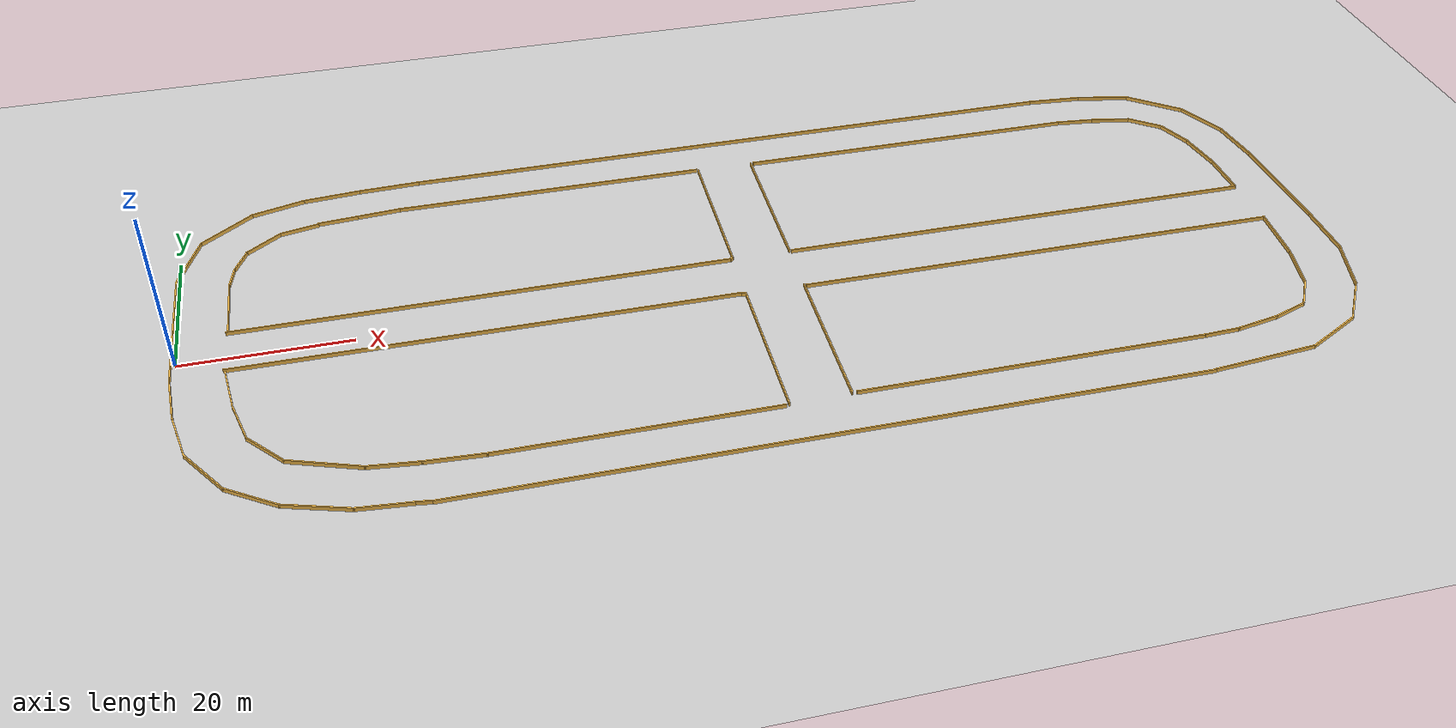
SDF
<sdf version="1.7">
 <world name="small_road_fixed">
  <model name="ground_plane">
   <static>1</static>
   <link name="link">
    <collision name="collision">
     <geometry><plane><normal>0 0 1</normal><size>100 100</size></plane></geometry>
     <surface>
      <contact><collide_bitmask>65535</collide_bitmask></contact>
      <friction><ode><mu>100</mu><mu2>50</mu2></ode></friction>
     </surface>
    </collision>
    <visual name="visual">
     <cast_shadows>0</cast_shadows>
     <geometry><plane><normal>0 0 1</normal><size>100 100</size></plane></geometry>
     <material>
      <script><uri>file://media/materials/scripts/gazebo.material</uri><name>Gazebo/Grey</name></script>
     </material>
    </visual>
   </link>
  </model>
  <model name="road_tracks">
   <pose>69.5076 0.923117 0 0 -0 -1.57505</pose>
   <link name="Wall_0">
    <collision name="Wall_0_Collision">
     <geometry><box><size>60 0.15 0.5</size></box></geometry>
     <pose>0 0 0.25 0 -0 0</pose>
    </collision>
    <visual name="Wall_0_Visual">
     <pose>0 0 0.25 0 -0 0</pose>
     <geometry><box><size>60 0.15 0.5</size></box></geometry>
     <material>
      <script><uri>file://media/materials/scripts/gazebo.material</uri><name>Gazebo/Grey</name></script>
      <ambient>1 0.764706 0.305882 1</ambient>
     </material>
     <meta><layer>0</layer></meta>
    </visual>
    <pose>3.62459 -34.2484 0 0 -0 -1.57079</pose>
   </link>
   <link name="Wall_11">
    <collision name="Wall_11_Collision">
     <geometry><box><size>20.75 0.15 0.5</size></box></geometry>
     <pose>0 0 0.25 0 -0 0</pose>
    </collision>
    <visual name="Wall_11_Visual">
     <pose>0 0 0.25 0 -0 0</pose>
     <geometry><box><size>20.75 0.15 0.5</size></box></geometry>
     <material>
      <script><uri>file://media/materials/scripts/gazebo.material</uri><name>Gazebo/Grey</name></script>
      <ambient>1 0.764706 0.305882 1</ambient>
     </material>
     <meta><layer>0</layer></meta>
    </visual>
    <pose>14.1607 -3.84363 0 0 -0 0</pose>
   </link>
   <link name="Wall_14">
    <collision name="Wall_14_Collision">
     <geometry><box><size>0.694215 0.15 0.5</size></box></geometry>
     <pose>0 0 0.25 0 -0 0</pose>
    </collision>
    <visual name="Wall_14_Visual">
     <pose>0 0 0.25 0 -0 0</pose>
     <geometry><box><size>0.694215 0.15 0.5</size></box></geometry>
     <material>
      <script><uri>file://media/materials/scripts/gazebo.material</uri><name>Gazebo/Grey</name></script>
      <ambient>1 0.764706 0.305882 1</ambient>
     </material>
     <meta><layer>0</layer></meta>
    </visual>
    <pose>3.75272 -4.08363 0 0 -0 -2.06149</pose>
   </link>
   <link name="Wall_18">
    <collision name="Wall_18_Collision">
     <geometry><box><size>20.75 0.15 0.5</size></box></geometry>
     <pose>0 0 0.25 0 -0 0</pose>
    </collision>
    <visual name="Wall_18_Visual">
     <pose>0 0 0.25 0 -0 0</pose>
     <geometry><box><size>20.75 0.15 0.5</size></box></geometry>
     <material>
      <script><uri>file://media/materials/scripts/gazebo.material</uri><name>Gazebo/Grey</name></script>
      <ambient>1 0.764706 0.305882 1</ambient>
     </material>
     <meta><layer>0</layer></meta>
    </visual>
    <pose>-13.9695 -3.74763 0 0 -0 3.14159</pose>
   </link>
   <link name="Wall_198">
    <collision name="Wall_198_Collision">
     <geometry><box><size>13.1514 0.15 0.5</size></box></geometry>
     <pose>0 0 0.25 0 -0 0</pose>
    </collision>
    <visual name="Wall_198_Visual">
     <pose>0 0 0.25 0 -0 0</pose>
     <geometry><box><size>13.1514 0.15 0.5</size></box></geometry>
     <material>
      <script><uri>file://media/materials/scripts/gazebo.material</uri><name>Gazebo/Grey</name></script>
      <ambient>1 0.764706 0.305882 1</ambient>
     </material>
     <meta><layer>0</layer></meta>
    </visual>
    <pose>29.7845 50.6889 0 0 -0 1.66145</pose>
   </link>
   <link name="Wall_199">
    <collision name="Wall_199_Collision">
     <geometry><box><size>8.0708 0.15 0.5</size></box></geometry>
     <pose>0 0 0.25 0 -0 0</pose>
    </collision>
    <visual name="Wall_199_Visual">
     <pose>0 0 0.25 0 -0 0</pose>
     <geometry><box><size>8.0708 0.15 0.5</size></box></geometry>
     <material>
      <script><uri>file://media/materials/scripts/gazebo.material</uri><name>Gazebo/Grey</name></script>
      <ambient>1 0.764706 0.305882 1</ambient>
     </material>
     <meta><layer>0</layer></meta>
    </visual>
    <pose>27.3337 60.6581 0 0 -0 2.06033</pose>
   </link>
   <link name="Wall_20">
    <collision name="Wall_20_Collision">
     <geometry><box><size>0.505876 0.15 0.5</size></box></geometry>
     <pose>0 0 0.25 0 -0 0</pose>
    </collision>
    <visual name="Wall_20_Visual">
     <pose>0 0 0.25 0 -0 0</pose>
     <geometry><box><size>0.505876 0.15 0.5</size></box></geometry>
     <material>
      <script><uri>file://media/materials/scripts/gazebo.material</uri><name>Gazebo/Grey</name></script>
      <ambient>1 0.764706 0.305882 1</ambient>
     </material>
     <meta><layer>0</layer></meta>
    </visual>
    <pose>-3.56351 -3.89063 0 0 -0 2.20868</pose>
   </link>
   <link name="Wall_200">
    <collision name="Wall_200_Collision">
     <geometry><box><size>7.16954 0.15 0.5</size></box></geometry>
     <pose>0 0 0.25 0 -0 0</pose>
    </collision>
    <visual name="Wall_200_Visual">
     <pose>0 0 0.25 0 -0 0</pose>
     <geometry><box><size>7.16954 0.15 0.5</size></box></geometry>
     <material>
      <script><uri>file://media/materials/scripts/gazebo.material</uri><name>Gazebo/Grey</name></script>
      <ambient>1 0.764706 0.305882 1</ambient>
     </material>
     <meta><layer>0</layer></meta>
    </visual>
    <pose>22.529 66.0664 0 0 -0 2.56513</pose>
   </link>
   <link name="Wall_201">
    <collision name="Wall_201_Collision">
     <geometry><box><size>7.78977 0.15 0.5</size></box></geometry>
     <pose>0 0 0.25 0 -0 0</pose>
    </collision>
    <visual name="Wall_201_Visual">
     <pose>0 0 0.25 0 -0 0</pose>
     <geometry><box><size>7.78977 0.15 0.5</size></box></geometry>
     <material>
      <script><uri>file://media/materials/scripts/gazebo.material</uri><name>Gazebo/Grey</name></script>
      <ambient>1 0.764706 0.305882 1</ambient>
     </material>
     <meta><layer>0</layer></meta>
    </visual>
    <pose>15.908 69.009 0 0 -0 2.86867</pose>
   </link>
   <link name="Wall_202">
    <collision name="Wall_202_Collision">
     <geometry><box><size>7.80173 0.15 0.5</size></box></geometry>
     <pose>0 0 0.25 0 -0 0</pose>
    </collision>
    <visual name="Wall_202_Visual">
     <pose>0 0 0.25 0 -0 0</pose>
     <geometry><box><size>7.80173 0.15 0.5</size></box></geometry>
     <material>
      <script><uri>file://media/materials/scripts/gazebo.material</uri><name>Gazebo/Grey</name></script>
      <ambient>1 0.764706 0.305882 1</ambient>
     </material>
     <meta><layer>0</layer></meta>
    </visual>
    <pose>8.40349 70.039 0 0 -0 3.1415</pose>
   </link>
   <link name="Wall_203">
    <collision name="Wall_203_Collision">
     <geometry><box><size>15.1693 0.15 0.5</size></box></geometry>
     <pose>0 0 0.25 0 -0 0</pose>
    </collision>
    <visual name="Wall_203_Visual">
     <pose>0 0 0.25 0 -0 0</pose>
     <geometry><box><size>15.1693 0.15 0.5</size></box></geometry>
     <material>
      <script><uri>file://media/materials/scripts/gazebo.material</uri><name>Gazebo/Grey</name></script>
      <ambient>1 0.764706 0.305882 1</ambient>
     </material>
     <meta><layer>0</layer></meta>
    </visual>
    <pose>-2.92601 69.7449 0 0 -0 -3.10236</pose>
   </link>
   <link name="Wall_204">
    <collision name="Wall_204_Collision">
     <geometry><box><size>6.9761 0.15 0.5</size></box></geometry>
     <pose>0 0 0.25 0 -0 0</pose>
    </collision>
    <visual name="Wall_204_Visual">
     <pose>0 0 0.25 0 -0 0</pose>
     <geometry><box><size>6.9761 0.15 0.5</size></box></geometry>
     <material>
      <script><uri>file://media/materials/scripts/gazebo.material</uri><name>Gazebo/Grey</name></script>
      <ambient>1 0.764706 0.305882 1</ambient>
     </material>
     <meta><layer>0</layer></meta>
    </visual>
    <pose>-13.814 69.0089 0 0 -0 -3.01188</pose>
   </link>
   <link name="Wall_205">
    <collision name="Wall_205_Collision">
     <geometry><box><size>6.99465 0.15 0.5</size></box></geometry>
     <pose>0 0 0.25 0 -0 0</pose>
    </collision>
    <visual name="Wall_205_Visual">
     <pose>0 0 0.25 0 -0 0</pose>
     <geometry><box><size>6.99465 0.15 0.5</size></box></geometry>
     <material>
      <script><uri>file://media/materials/scripts/gazebo.material</uri><name>Gazebo/Grey</name></script>
      <ambient>1 0.764706 0.305882 1</ambient>
     </material>
     <meta><layer>0</layer></meta>
    </visual>
    <pose>-20.2885 67.0959 0 0 -0 -2.69715</pose>
   </link>
   <link name="Wall_206">
    <collision name="Wall_206_Collision">
     <geometry><box><size>8.09985 0.15 0.5</size></box></geometry>
     <pose>0 0 0.25 0 -0 0</pose>
    </collision>
    <visual name="Wall_206_Visual">
     <pose>0 0 0.25 0 -0 0</pose>
     <geometry><box><size>8.09985 0.15 0.5</size></box></geometry>
     <material>
      <script><uri>file://media/materials/scripts/gazebo.material</uri><name>Gazebo/Grey</name></script>
      <ambient>1 0.764706 0.305882 1</ambient>
     </material>
     <meta><layer>0</layer></meta>
    </visual>
    <pose>-25.8795 62.5349 0 0 -0 -2.25131</pose>
   </link>
   <link name="Wall_207">
    <collision name="Wall_207_Collision">
     <geometry><box><size>7.0764 0.15 0.5</size></box></geometry>
     <pose>0 0 0.25 0 -0 0</pose>
    </collision>
    <visual name="Wall_207_Visual">
     <pose>0 0 0.25 0 -0 0</pose>
     <geometry><box><size>7.0764 0.15 0.5</size></box></geometry>
     <material>
      <script><uri>file://media/materials/scripts/gazebo.material</uri><name>Gazebo/Grey</name></script>
      <ambient>1 0.764706 0.305882 1</ambient>
     </material>
     <meta><layer>0</layer></meta>
    </visual>
    <pose>-29.1165 56.0609 0 0 -0 -1.78493</pose>
   </link>
   <link name="Wall_208">
    <collision name="Wall_208_Collision">
     <geometry><box><size>7.23707 0.15 0.5</size></box></geometry>
     <pose>0 0 0.25 0 -0 0</pose>
    </collision>
    <visual name="Wall_208_Visual">
     <pose>0 0 0.25 0 -0 0</pose>
     <geometry><box><size>7.23707 0.15 0.5</size></box></geometry>
     <material>
      <script><uri>file://media/materials/scripts/gazebo.material</uri><name>Gazebo/Grey</name></script>
      <ambient>1 0.764706 0.305882 1</ambient>
     </material>
     <meta><layer>0</layer></meta>
    </visual>
    <pose>-30.1465 49.1454 0 0 -0 -1.65387</pose>
   </link>
   <link name="Wall_209">
    <collision name="Wall_209_Collision">
     <geometry><box><size>85.7844 0.15 0.5</size></box></geometry>
     <pose>0 0 0.25 0 -0 0</pose>
    </collision>
    <visual name="Wall_209_Visual">
     <pose>0 0 0.25 0 -0 0</pose>
     <geometry><box><size>85.7844 0.15 0.5</size></box></geometry>
     <material>
      <script><uri>file://media/materials/scripts/gazebo.material</uri><name>Gazebo/Grey</name></script>
      <ambient>1 0.764706 0.305882 1</ambient>
     </material>
     <meta><layer>0</layer></meta>
    </visual>
    <pose>-30.2935 2.79737 0 0 -0 -1.56736</pose>
   </link>
   <link name="Wall_210">
    <collision name="Wall_210_Collision">
     <geometry><box><size>7.8068 0.15 0.5</size></box></geometry>
     <pose>0 0 0.25 0 -0 0</pose>
    </collision>
    <visual name="Wall_210_Visual">
     <pose>0 0 0.25 0 -0 0</pose>
     <geometry><box><size>7.8068 0.15 0.5</size></box></geometry>
     <material>
      <script><uri>file://media/materials/scripts/gazebo.material</uri><name>Gazebo/Grey</name></script>
      <ambient>1 0.764706 0.305882 1</ambient>
     </material>
     <meta><layer>0</layer></meta>
    </visual>
    <pose>-29.9995 -43.8451 0 0 -0 -1.53239</pose>
   </link>
   <link name="Wall_211">
    <collision name="Wall_211_Collision">
     <geometry><box><size>7.23707 0.15 0.5</size></box></geometry>
     <pose>0 0 0.25 0 -0 0</pose>
    </collision>
    <visual name="Wall_211_Visual">
     <pose>0 0 0.25 0 -0 0</pose>
     <geometry><box><size>7.23707 0.15 0.5</size></box></geometry>
     <material>
      <script><uri>file://media/materials/scripts/gazebo.material</uri><name>Gazebo/Grey</name></script>
      <ambient>1 0.764706 0.305882 1</ambient>
     </material>
     <meta><layer>0</layer></meta>
    </visual>
    <pose>-29.558 -51.2021 0 0 -0 -1.4876</pose>
   </link>
   <link name="Wall_212">
    <collision name="Wall_212_Collision">
     <geometry><box><size>6.86049 0.15 0.5</size></box></geometry>
     <pose>0 0 0.25 0 -0 0</pose>
    </collision>
    <visual name="Wall_212_Visual">
     <pose>0 0 0.25 0 -0 0</pose>
     <geometry><box><size>6.86049 0.15 0.5</size></box></geometry>
     <material>
      <script><uri>file://media/materials/scripts/gazebo.material</uri><name>Gazebo/Grey</name></script>
      <ambient>1 0.764706 0.305882 1</ambient>
     </material>
     <meta><layer>0</layer></meta>
    </visual>
    <pose>-28.3805 -57.9706 0 0 -0 -1.30449</pose>
   </link>
   <link name="Wall_213">
    <collision name="Wall_213_Collision">
     <geometry><box><size>8.10086 0.15 0.5</size></box></geometry>
     <pose>0 0 0.25 0 -0 0</pose>
    </collision>
    <visual name="Wall_213_Visual">
     <pose>0 0 0.25 0 -0 0</pose>
     <geometry><box><size>8.10086 0.15 0.5</size></box></geometry>
     <material>
      <script><uri>file://media/materials/scripts/gazebo.material</uri><name>Gazebo/Grey</name></script>
      <ambient>1 0.764706 0.305882 1</ambient>
     </material>
     <meta><layer>0</layer></meta>
    </visual>
    <pose>-24.9965 -64.2976 0 0 -0 -0.890359</pose>
   </link>
   <link name="Wall_214">
    <collision name="Wall_214_Collision">
     <geometry><box><size>8.24656 0.15 0.5</size></box></geometry>
     <pose>0 0 0.25 0 -0 0</pose>
    </collision>
    <visual name="Wall_214_Visual">
     <pose>0 0 0.25 0 -0 0</pose>
     <geometry><box><size>8.24656 0.15 0.5</size></box></geometry>
     <material>
      <script><uri>file://media/materials/scripts/gazebo.material</uri><name>Gazebo/Grey</name></script>
      <ambient>1 0.764706 0.305882 1</ambient>
     </material>
     <meta><layer>0</layer></meta>
    </visual>
    <pose>-18.67 -68.7116 0 0 -0 -0.333195</pose>
   </link>
   <link name="Wall_215">
    <collision name="Wall_215_Collision">
     <geometry><box><size>19.2778 0.15 0.5</size></box></geometry>
     <pose>0 0 0.25 0 -0 0</pose>
    </collision>
    <visual name="Wall_215_Visual">
     <pose>0 0 0.25 0 -0 0</pose>
     <geometry><box><size>19.2778 0.15 0.5</size></box></geometry>
     <material>
      <script><uri>file://media/materials/scripts/gazebo.material</uri><name>Gazebo/Grey</name></script>
      <ambient>1 0.764706 0.305882 1</ambient>
     </material>
     <meta><layer>0</layer></meta>
    </visual>
    <pose>-5.28051 -70.0356 0 0 -0 0</pose>
   </link>
   <link name="Wall_216">
    <collision name="Wall_216_Collision">
     <geometry><box><size>6.65074 0.15 0.5</size></box></geometry>
     <pose>0 0 0.25 0 -0 0</pose>
    </collision>
    <visual name="Wall_216_Visual">
     <pose>0 0 0.25 0 -0 0</pose>
     <geometry><box><size>6.65074 0.15 0.5</size></box></geometry>
     <material>
      <script><uri>file://media/materials/scripts/gazebo.material</uri><name>Gazebo/Grey</name></script>
      <ambient>1 0.764706 0.305882 1</ambient>
     </material>
     <meta><layer>0</layer></meta>
    </visual>
    <pose>7.52049 -69.7416 0 0 -0 0.090576</pose>
   </link>
   <link name="Wall_217">
    <collision name="Wall_217_Collision">
     <geometry><box><size>6.78914 0.15 0.5</size></box></geometry>
     <pose>0 0 0.25 0 -0 0</pose>
    </collision>
    <visual name="Wall_217_Visual">
     <pose>0 0 0.25 0 -0 0</pose>
     <geometry><box><size>6.78914 0.15 0.5</size></box></geometry>
     <material>
      <script><uri>file://media/materials/scripts/gazebo.material</uri><name>Gazebo/Grey</name></script>
      <ambient>1 0.764706 0.305882 1</ambient>
     </material>
     <meta><layer>0</layer></meta>
    </visual>
    <pose>13.9945 -68.7116 0 0 -0 0.22357</pose>
   </link>
   <link name="Wall_218">
    <collision name="Wall_218_Collision">
     <geometry><box><size>7.57715 0.15 0.5</size></box></geometry>
     <pose>0 0 0.25 0 -0 0</pose>
    </collision>
    <visual name="Wall_218_Visual">
     <pose>0 0 0.25 0 -0 0</pose>
     <geometry><box><size>7.57715 0.15 0.5</size></box></geometry>
     <material>
      <script><uri>file://media/materials/scripts/gazebo.material</uri><name>Gazebo/Grey</name></script>
      <ambient>1 0.764706 0.305882 1</ambient>
     </material>
     <meta><layer>0</layer></meta>
    </visual>
    <pose>20.3215 -65.9156 0 0 -0 0.588003</pose>
   </link>
   <link name="Wall_219">
    <collision name="Wall_219_Collision">
     <geometry><box><size>6.92471 0.15 0.5</size></box></geometry>
     <pose>0 0 0.25 0 -0 0</pose>
    </collision>
    <visual name="Wall_219_Visual">
     <pose>0 0 0.25 0 -0 0</pose>
     <geometry><box><size>6.92471 0.15 0.5</size></box></geometry>
     <material>
      <script><uri>file://media/materials/scripts/gazebo.material</uri><name>Gazebo/Grey</name></script>
      <ambient>1 0.764706 0.305882 1</ambient>
     </material>
     <meta><layer>0</layer></meta>
    </visual>
    <pose>25.3245 -61.0601 0 0 -0 0.970676</pose>
   </link>
   <link name="Wall_22">
    <collision name="Wall_22_Collision">
     <geometry><box><size>39 0.15 0.5</size></box></geometry>
     <pose>0 0 0.25 0 -0 0</pose>
    </collision>
    <visual name="Wall_22_Visual">
     <pose>0 0 0.25 0 -0 0</pose>
     <geometry><box><size>39 0.15 0.5</size></box></geometry>
     <material>
      <script><uri>file://media/materials/scripts/gazebo.material</uri><name>Gazebo/Grey</name></script>
      <ambient>1 0.764706 0.305882 1</ambient>
     </material>
     <meta><layer>0</layer></meta>
    </visual>
    <pose>-24.3675 -23.4146 0 0 -0 -1.5708</pose>
   </link>
   <link name="Wall_220">
    <collision name="Wall_220_Collision">
     <geometry><box><size>7.87436 0.15 0.5</size></box></geometry>
     <pose>0 0 0.25 0 -0 0</pose>
    </collision>
    <visual name="Wall_220_Visual">
     <pose>0 0 0.25 0 -0 0</pose>
     <geometry><box><size>7.87436 0.15 0.5</size></box></geometry>
     <material>
      <script><uri>file://media/materials/scripts/gazebo.material</uri><name>Gazebo/Grey</name></script>
      <ambient>1 0.764706 0.305882 1</ambient>
     </material>
     <meta><layer>0</layer></meta>
    </visual>
    <pose>28.4145 -54.5861 0 0 -0 1.26112</pose>
   </link>
   <link name="Wall_221">
    <collision name="Wall_221_Collision">
     <geometry><box><size>6.35773 0.15 0.5</size></box></geometry>
     <pose>0 0 0.25 0 -0 0</pose>
    </collision>
    <visual name="Wall_221_Visual">
     <pose>0 0 0.25 0 -0 0</pose>
     <geometry><box><size>6.35773 0.15 0.5</size></box></geometry>
     <material>
      <script><uri>file://media/materials/scripts/gazebo.material</uri><name>Gazebo/Grey</name></script>
      <ambient>1 0.764706 0.305882 1</ambient>
     </material>
     <meta><layer>0</layer></meta>
    </visual>
    <pose>29.8855 -47.8176 0 0 -0 1.47594</pose>
   </link>
   <link name="Wall_222">
    <collision name="Wall_222_Collision">
     <geometry><box><size>1.82339 0.15 0.5</size></box></geometry>
     <pose>0 0 0.25 0 -0 0</pose>
    </collision>
    <visual name="Wall_222_Visual">
     <pose>0 0 0.25 0 -0 0</pose>
     <geometry><box><size>1.82339 0.15 0.5</size></box></geometry>
     <material>
      <script><uri>file://media/materials/scripts/gazebo.material</uri><name>Gazebo/Grey</name></script>
      <ambient>1 0.764706 0.305882 1</ambient>
     </material>
     <meta><layer>0</layer></meta>
    </visual>
    <pose>30.286 -43.8981 0 0 -0 1.4431</pose>
   </link>
   <link name="Wall_225">
    <collision name="Wall_225_Collision">
     <geometry><box><size>20.75 0.15 0.5</size></box></geometry>
     <pose>0 0 0.25 0 -0 0</pose>
    </collision>
    <visual name="Wall_225_Visual">
     <pose>0 0 0.25 0 -0 0</pose>
     <geometry><box><size>20.75 0.15 0.5</size></box></geometry>
     <material>
      <script><uri>file://media/materials/scripts/gazebo.material</uri><name>Gazebo/Grey</name></script>
      <ambient>1 0.764706 0.305882 1</ambient>
     </material>
     <meta><layer>0</layer></meta>
    </visual>
    <pose>14.0655 3.37337 0 0 -0 0</pose>
   </link>
   <link name="Wall_227">
    <collision name="Wall_227_Collision">
     <geometry><box><size>42 0.15 0.5</size></box></geometry>
     <pose>0 0 0.25 0 -0 0</pose>
    </collision>
    <visual name="Wall_227_Visual">
     <pose>0 0 0.25 0 -0 0</pose>
     <geometry><box><size>42 0.15 0.5</size></box></geometry>
     <material>
      <script><uri>file://media/materials/scripts/gazebo.material</uri><name>Gazebo/Grey</name></script>
      <ambient>1 0.764706 0.305882 1</ambient>
     </material>
     <meta><layer>0</layer></meta>
    </visual>
    <pose>24.3475 24.8924 0 0 -0 1.5708</pose>
   </link>
   <link name="Wall_228">
    <collision name="Wall_228_Collision">
     <geometry><box><size>4.52688 0.15 0.5</size></box></geometry>
     <pose>0 0 0.25 0 -0 0</pose>
    </collision>
    <visual name="Wall_228_Visual">
     <pose>0 0 0.25 0 -0 0</pose>
     <geometry><box><size>4.52688 0.15 0.5</size></box></geometry>
     <material>
      <script><uri>file://media/materials/scripts/gazebo.material</uri><name>Gazebo/Grey</name></script>
      <ambient>1 0.764706 0.305882 1</ambient>
     </material>
     <meta><layer>0</layer></meta>
    </visual>
    <pose>24.2565 48.0039 0 0 -0 1.61239</pose>
   </link>
   <link name="Wall_229">
    <collision name="Wall_229_Collision">
     <geometry><box><size>5.62094 0.15 0.5</size></box></geometry>
     <pose>0 0 0.25 0 -0 0</pose>
    </collision>
    <visual name="Wall_229_Visual">
     <pose>0 0 0.25 0 -0 0</pose>
     <geometry><box><size>5.62094 0.15 0.5</size></box></geometry>
     <material>
      <script><uri>file://media/materials/scripts/gazebo.material</uri><name>Gazebo/Grey</name></script>
      <ambient>1 0.764706 0.305882 1</ambient>
     </material>
     <meta><layer>0</layer></meta>
    </visual>
    <pose>23.6528 52.8774 0 0 -0 1.75933</pose>
   </link>
   <link name="Wall_23">
    <collision name="Wall_23_Collision">
     <geometry><box><size>5.52332 0.15 0.5</size></box></geometry>
     <pose>0 0 0.25 0 -0 0</pose>
    </collision>
    <visual name="Wall_23_Visual">
     <pose>0 0 0.25 0 -0 0</pose>
     <geometry><box><size>5.52332 0.15 0.5</size></box></geometry>
     <material>
      <script><uri>file://media/materials/scripts/gazebo.material</uri><name>Gazebo/Grey</name></script>
      <ambient>1 0.764706 0.305882 1</ambient>
     </material>
     <meta><layer>0</layer></meta>
    </visual>
    <pose>-24.1395 -45.5166 0 0 -0 -1.48583</pose>
   </link>
   <link name="Wall_230">
    <collision name="Wall_230_Collision">
     <geometry><box><size>4.76296 0.15 0.5</size></box></geometry>
     <pose>0 0 0.25 0 -0 0</pose>
    </collision>
    <visual name="Wall_230_Visual">
     <pose>0 0 0.25 0 -0 0</pose>
     <geometry><box><size>4.76296 0.15 0.5</size></box></geometry>
     <material>
      <script><uri>file://media/materials/scripts/gazebo.material</uri><name>Gazebo/Grey</name></script>
      <ambient>1 0.764706 0.305882 1</ambient>
     </material>
     <meta><layer>0</layer></meta>
    </visual>
    <pose>22.3725 57.7394 0 0 -0 1.91007</pose>
   </link>
   <link name="Wall_231">
    <collision name="Wall_231_Collision">
     <geometry><box><size>4.6246 0.15 0.5</size></box></geometry>
     <pose>0 0 0.25 0 -0 0</pose>
    </collision>
    <visual name="Wall_231_Visual">
     <pose>0 0 0.25 0 -0 0</pose>
     <geometry><box><size>4.6246 0.15 0.5</size></box></geometry>
     <material>
      <script><uri>file://media/materials/scripts/gazebo.material</uri><name>Gazebo/Grey</name></script>
      <ambient>1 0.764706 0.305882 1</ambient>
     </material>
     <meta><layer>0</layer></meta>
    </visual>
    <pose>19.6867 61.0659 0 0 -0 2.60095</pose>
   </link>
   <link name="Wall_232">
    <collision name="Wall_232_Collision">
     <geometry><box><size>6.42354 0.15 0.5</size></box></geometry>
     <pose>0 0 0.25 0 -0 0</pose>
    </collision>
    <visual name="Wall_232_Visual">
     <pose>0 0 0.25 0 -0 0</pose>
     <geometry><box><size>6.42354 0.15 0.5</size></box></geometry>
     <material>
      <script><uri>file://media/materials/scripts/gazebo.material</uri><name>Gazebo/Grey</name></script>
      <ambient>1 0.764706 0.305882 1</ambient>
     </material>
     <meta><layer>0</layer></meta>
    </visual>
    <pose>14.6975 62.8574 0 0 -0 2.93613</pose>
   </link>
   <link name="Wall_233">
    <collision name="Wall_233_Collision">
     <geometry><box><size>7.84377 0.15 0.5</size></box></geometry>
     <pose>0 0 0.25 0 -0 0</pose>
    </collision>
    <visual name="Wall_233_Visual">
     <pose>0 0 0.25 0 -0 0</pose>
     <geometry><box><size>7.84377 0.15 0.5</size></box></geometry>
     <material>
      <script><uri>file://media/materials/scripts/gazebo.material</uri><name>Gazebo/Grey</name></script>
      <ambient>1 0.764706 0.305882 1</ambient>
     </material>
     <meta><layer>0</layer></meta>
    </visual>
    <pose>7.78799 63.7529 0 0 -0 3.07513</pose>
   </link>
   <link name="Wall_234">
    <collision name="Wall_234_Collision">
     <geometry><box><size>60.5 0.15 0.5</size></box></geometry>
     <pose>0 0 0.25 0 -0 0</pose>
    </collision>
    <visual name="Wall_234_Visual">
     <pose>0 0 0.25 0 -0 0</pose>
     <geometry><box><size>60.5 0.15 0.5</size></box></geometry>
     <material>
      <script><uri>file://media/materials/scripts/gazebo.material</uri><name>Gazebo/Grey</name></script>
      <ambient>1 0.764706 0.305882 1</ambient>
     </material>
     <meta><layer>0</layer></meta>
    </visual>
    <pose>3.94949 33.8334 0 0 -0 -1.5708</pose>
   </link>
   <link name="Wall_236">
    <collision name="Wall_236_Collision">
     <geometry><box><size>20.75 0.15 0.5</size></box></geometry>
     <pose>0 0 0.25 0 -0 0</pose>
    </collision>
    <visual name="Wall_236_Visual">
     <pose>0 0 0.25 0 -0 0</pose>
     <geometry><box><size>20.75 0.15 0.5</size></box></geometry>
     <material>
      <script><uri>file://media/materials/scripts/gazebo.material</uri><name>Gazebo/Grey</name></script>
      <ambient>1 0.764706 0.305882 1</ambient>
     </material>
     <meta><layer>0</layer></meta>
    </visual>
    <pose>-13.8895 3.43237 0 0 -0 3.14159</pose>
   </link>
   <link name="Wall_239">
    <collision name="Wall_239_Collision">
     <geometry><box><size>60.25 0.15 0.5</size></box></geometry>
     <pose>0 0 0.25 0 -0 0</pose>
    </collision>
    <visual name="Wall_239_Visual">
     <pose>0 0 0.25 0 -0 0</pose>
     <geometry><box><size>60.25 0.15 0.5</size></box></geometry>
     <material>
      <script><uri>file://media/materials/scripts/gazebo.material</uri><name>Gazebo/Grey</name></script>
      <ambient>1 0.764706 0.305882 1</ambient>
     </material>
     <meta><layer>0</layer></meta>
    </visual>
    <pose>-3.46251 33.7384 0 0 -0 1.5708</pose>
   </link>
   <link name="Wall_24">
    <collision name="Wall_24_Collision">
     <geometry><box><size>5.09188 0.15 0.5</size></box></geometry>
     <pose>0 0 0.25 0 -0 0</pose>
    </collision>
    <visual name="Wall_24_Visual">
     <pose>0 0 0.25 0 -0 0</pose>
     <geometry><box><size>5.09188 0.15 0.5</size></box></geometry>
     <material>
      <script><uri>file://media/materials/scripts/gazebo.material</uri><name>Gazebo/Grey</name></script>
      <ambient>1 0.764706 0.305882 1</ambient>
     </material>
     <meta><layer>0</layer></meta>
    </visual>
    <pose>-23.7015 -50.6556 0 0 -0 -1.48571</pose>
   </link>
   <link name="Wall_241">
    <collision name="Wall_241_Collision">
     <geometry><box><size>6.3578 0.15 0.5</size></box></geometry>
     <pose>0 0 0.25 0 -0 0</pose>
    </collision>
    <visual name="Wall_241_Visual">
     <pose>0 0 0.25 0 -0 0</pose>
     <geometry><box><size>6.3578 0.15 0.5</size></box></geometry>
     <material>
      <script><uri>file://media/materials/scripts/gazebo.material</uri><name>Gazebo/Grey</name></script>
      <ambient>1 0.764706 0.305882 1</ambient>
     </material>
     <meta><layer>0</layer></meta>
    </visual>
    <pose>-6.56601 63.7219 0 0 -0 -3.12017</pose>
   </link>
   <link name="Wall_242">
    <collision name="Wall_242_Collision">
     <geometry><box><size>6.0901 0.15 0.5</size></box></geometry>
     <pose>0 0 0.25 0 -0 0</pose>
    </collision>
    <visual name="Wall_242_Visual">
     <pose>0 0 0.25 0 -0 0</pose>
     <geometry><box><size>6.0901 0.15 0.5</size></box></geometry>
     <material>
      <script><uri>file://media/materials/scripts/gazebo.material</uri><name>Gazebo/Grey</name></script>
      <ambient>1 0.764706 0.305882 1</ambient>
     </material>
     <meta><layer>0</layer></meta>
    </visual>
    <pose>-12.5955 63.1469 0 0 -0 -2.96952</pose>
   </link>
   <link name="Wall_243">
    <collision name="Wall_243_Collision">
     <geometry><box><size>4.82793 0.15 0.5</size></box></geometry>
     <pose>0 0 0.25 0 -0 0</pose>
    </collision>
    <visual name="Wall_243_Visual">
     <pose>0 0 0.25 0 -0 0</pose>
     <geometry><box><size>4.82793 0.15 0.5</size></box></geometry>
     <material>
      <script><uri>file://media/materials/scripts/gazebo.material</uri><name>Gazebo/Grey</name></script>
      <ambient>1 0.764706 0.305882 1</ambient>
     </material>
     <meta><layer>0</layer></meta>
    </visual>
    <pose>-17.6845 61.7474 0 0 -0 -2.75085</pose>
   </link>
   <link name="Wall_248">
    <collision name="Wall_248_Collision">
     <geometry><box><size>43.75 0.15 0.5</size></box></geometry>
     <pose>0 0 0.25 0 -0 0</pose>
    </collision>
    <visual name="Wall_248_Visual">
     <pose>0 0 0.25 0 -0 0</pose>
     <geometry><box><size>43.75 0.15 0.5</size></box></geometry>
     <material>
      <script><uri>file://media/materials/scripts/gazebo.material</uri><name>Gazebo/Grey</name></script>
      <ambient>1 0.764706 0.305882 1</ambient>
     </material>
     <meta><layer>0</layer></meta>
    </visual>
    <pose>-24.2005 25.6364 0 0 -0 1.5708</pose>
   </link>
   <link name="Wall_249">
    <collision name="Wall_249_Collision">
     <geometry><box><size>4.89257 0.15 0.5</size></box></geometry>
     <pose>0 0 0.25 0 -0 0</pose>
    </collision>
    <visual name="Wall_249_Visual">
     <pose>0 0 0.25 0 -0 0</pose>
     <geometry><box><size>4.89257 0.15 0.5</size></box></geometry>
     <material>
      <script><uri>file://media/materials/scripts/gazebo.material</uri><name>Gazebo/Grey</name></script>
      <ambient>1 0.764706 0.305882 1</ambient>
     </material>
     <meta><layer>0</layer></meta>
    </visual>
    <pose>-23.9435 49.7939 0 0 -0 1.46221</pose>
   </link>
   <link name="Wall_25">
    <collision name="Wall_25_Collision">
     <geometry><box><size>4.8917 0.15 0.5</size></box></geometry>
     <pose>0 0 0.25 0 -0 0</pose>
    </collision>
    <visual name="Wall_25_Visual">
     <pose>0 0 0.25 0 -0 0</pose>
     <geometry><box><size>4.8917 0.15 0.5</size></box></geometry>
     <material>
      <script><uri>file://media/materials/scripts/gazebo.material</uri><name>Gazebo/Grey</name></script>
      <ambient>1 0.764706 0.305882 1</ambient>
     </material>
     <meta><layer>0</layer></meta>
    </visual>
    <pose>-22.8405 -55.4336 0 0 -0 -1.35527</pose>
   </link>
   <link name="Wall_250">
    <collision name="Wall_250_Collision">
     <geometry><box><size>5.3397 0.15 0.5</size></box></geometry>
     <pose>0 0 0.25 0 -0 0</pose>
    </collision>
    <visual name="Wall_250_Visual">
     <pose>0 0 0.25 0 -0 0</pose>
     <geometry><box><size>5.3397 0.15 0.5</size></box></geometry>
     <material>
      <script><uri>file://media/materials/scripts/gazebo.material</uri><name>Gazebo/Grey</name></script>
      <ambient>1 0.764706 0.305882 1</ambient>
     </material>
     <meta><layer>0</layer></meta>
    </visual>
    <pose>-23.1775 54.6959 0 0 -0 1.37336</pose>
   </link>
   <link name="Wall_251">
    <collision name="Wall_251_Collision">
     <geometry><box><size>4.68028 0.15 0.5</size></box></geometry>
     <pose>0 0 0.25 0 -0 0</pose>
    </collision>
    <visual name="Wall_251_Visual">
     <pose>0 0 0.25 0 -0 0</pose>
     <geometry><box><size>4.68028 0.15 0.5</size></box></geometry>
     <material>
      <script><uri>file://media/materials/scripts/gazebo.material</uri><name>Gazebo/Grey</name></script>
      <ambient>1 0.764706 0.305882 1</ambient>
     </material>
     <meta><layer>0</layer></meta>
    </visual>
    <pose>-21.269 59.0214 0 0 -0 0.904777</pose>
   </link>
   <link name="Wall_26">
    <collision name="Wall_26_Collision">
     <geometry><box><size>5.30462 0.15 0.5</size></box></geometry>
     <pose>0 0 0.25 0 -0 0</pose>
    </collision>
    <visual name="Wall_26_Visual">
     <pose>0 0 0.25 0 -0 0</pose>
     <geometry><box><size>5.30462 0.15 0.5</size></box></geometry>
     <material>
      <script><uri>file://media/materials/scripts/gazebo.material</uri><name>Gazebo/Grey</name></script>
      <ambient>1 0.764706 0.305882 1</ambient>
     </material>
     <meta><layer>0</layer></meta>
    </visual>
    <pose>-20.7415 -59.7761 0 0 -0 -0.904903</pose>
   </link>
   <link name="Wall_27">
    <collision name="Wall_27_Collision">
     <geometry><box><size>3.79952 0.15 0.5</size></box></geometry>
     <pose>0 0 0.25 0 -0 0</pose>
    </collision>
    <visual name="Wall_27_Visual">
     <pose>0 0 0.25 0 -0 0</pose>
     <geometry><box><size>3.79952 0.15 0.5</size></box></geometry>
     <material>
      <script><uri>file://media/materials/scripts/gazebo.material</uri><name>Gazebo/Grey</name></script>
      <ambient>1 0.764706 0.305882 1</ambient>
     </material>
     <meta><layer>0</layer></meta>
    </visual>
    <pose>-17.4745 -62.5266 0 0 -0 -0.407986</pose>
   </link>
   <link name="Wall_28">
    <collision name="Wall_28_Collision">
     <geometry><box><size>3.38732 0.15 0.5</size></box></geometry>
     <pose>0 0 0.25 0 -0 0</pose>
    </collision>
    <visual name="Wall_28_Visual">
     <pose>0 0 0.25 0 -0 0</pose>
     <geometry><box><size>3.38732 0.15 0.5</size></box></geometry>
     <material>
      <script><uri>file://media/materials/scripts/gazebo.material</uri><name>Gazebo/Grey</name></script>
      <ambient>1 0.764706 0.305882 1</ambient>
     </material>
     <meta><layer>0</layer></meta>
    </visual>
    <pose>-14.2065 -63.5401 0 0 -0 -0.179771</pose>
   </link>
   <link name="Wall_29">
    <collision name="Wall_29_Collision">
     <geometry><box><size>7.08447 0.15 0.5</size></box></geometry>
     <pose>0 0 0.25 0 -0 0</pose>
    </collision>
    <visual name="Wall_29_Visual">
     <pose>0 0 0.25 0 -0 0</pose>
     <geometry><box><size>7.08447 0.15 0.5</size></box></geometry>
     <material>
      <script><uri>file://media/materials/scripts/gazebo.material</uri><name>Gazebo/Grey</name></script>
      <ambient>1 0.764706 0.305882 1</ambient>
     </material>
     <meta><layer>0</layer></meta>
    </visual>
    <pose>-9.14651 -63.8296 0 0 -0 0</pose>
   </link>
   <link name="Wall_30">
    <collision name="Wall_30_Collision">
     <geometry><box><size>2.31438 0.15 0.5</size></box></geometry>
     <pose>0 0 0.25 0 -0 0</pose>
    </collision>
    <visual name="Wall_30_Visual">
     <pose>0 0 0.25 0 -0 0</pose>
     <geometry><box><size>2.31438 0.15 0.5</size></box></geometry>
     <material>
      <script><uri>file://media/materials/scripts/gazebo.material</uri><name>Gazebo/Grey</name></script>
      <ambient>1 0.764706 0.305882 1</ambient>
     </material>
     <meta><layer>0</layer></meta>
    </visual>
    <pose>-4.59751 -63.8296 0 0 -0 0</pose>
   </link>
   <link name="Wall_37">
    <collision name="Wall_37_Collision">
     <geometry><box><size>32.75 0.15 0.5</size></box></geometry>
     <pose>0 0 0.25 0 -0 0</pose>
    </collision>
    <visual name="Wall_37_Visual">
     <pose>0 0 0.25 0 -0 0</pose>
     <geometry><box><size>32.75 0.15 0.5</size></box></geometry>
     <material>
      <script><uri>file://media/materials/scripts/gazebo.material</uri><name>Gazebo/Grey</name></script>
      <ambient>1 0.764706 0.305882 1</ambient>
     </material>
     <meta><layer>0</layer></meta>
    </visual>
    <pose>24.6215 -20.5356 0 0 -0 -1.5708</pose>
   </link>
   <link name="Wall_38">
    <collision name="Wall_38_Collision">
     <geometry><box><size>6.9768 0.15 0.5</size></box></geometry>
     <pose>0 0 0.25 0 -0 0</pose>
    </collision>
    <visual name="Wall_38_Visual">
     <pose>0 0 0.25 0 -0 0</pose>
     <geometry><box><size>6.9768 0.15 0.5</size></box></geometry>
     <material>
      <script><uri>file://media/materials/scripts/gazebo.material</uri><name>Gazebo/Grey</name></script>
      <ambient>1 0.764706 0.305882 1</ambient>
     </material>
     <meta><layer>0</layer></meta>
    </visual>
    <pose>24.4225 -40.2431 0 0 -0 -1.62913</pose>
   </link>
   <link name="Wall_39">
    <collision name="Wall_39_Collision">
     <geometry><box><size>6.06239 0.15 0.5</size></box></geometry>
     <pose>0 0 0.25 0 -0 0</pose>
    </collision>
    <visual name="Wall_39_Visual">
     <pose>0 0 0.25 0 -0 0</pose>
     <geometry><box><size>6.06239 0.15 0.5</size></box></geometry>
     <material>
      <script><uri>file://media/materials/scripts/gazebo.material</uri><name>Gazebo/Grey</name></script>
      <ambient>1 0.764706 0.305882 1</ambient>
     </material>
     <meta><layer>0</layer></meta>
    </visual>
    <pose>23.888 -46.5876 0 0 -0 -1.68454</pose>
   </link>
   <link name="Wall_40">
    <collision name="Wall_40_Collision">
     <geometry><box><size>8.87705 0.15 0.5</size></box></geometry>
     <pose>0 0 0.25 0 -0 0</pose>
    </collision>
    <visual name="Wall_40_Visual">
     <pose>0 0 0.25 0 -0 0</pose>
     <geometry><box><size>8.87705 0.15 0.5</size></box></geometry>
     <material>
      <script><uri>file://media/materials/scripts/gazebo.material</uri><name>Gazebo/Grey</name></script>
      <ambient>1 0.764706 0.305882 1</ambient>
     </material>
     <meta><layer>0</layer></meta>
    </visual>
    <pose>22.053 -53.6221 0 0 -0 -1.92161</pose>
   </link>
   <link name="Wall_43">
    <collision name="Wall_43_Collision">
     <geometry><box><size>6.12643 0.15 0.5</size></box></geometry>
     <pose>0 0 0.25 0 -0 0</pose>
    </collision>
    <visual name="Wall_43_Visual">
     <pose>0 0 0.25 0 -0 0</pose>
     <geometry><box><size>6.12643 0.15 0.5</size></box></geometry>
     <material>
      <script><uri>file://media/materials/scripts/gazebo.material</uri><name>Gazebo/Grey</name></script>
      <ambient>1 0.764706 0.305882 1</ambient>
     </material>
     <meta><layer>0</layer></meta>
    </visual>
    <pose>13.138 -62.3426 0 0 -0 -2.87855</pose>
   </link>
   <link name="Wall_44">
    <collision name="Wall_44_Collision">
     <geometry><box><size>6.42795 0.15 0.5</size></box></geometry>
     <pose>0 0 0.25 0 -0 0</pose>
    </collision>
    <visual name="Wall_44_Visual">
     <pose>0 0 0.25 0 -0 0</pose>
     <geometry><box><size>6.42795 0.15 0.5</size></box></geometry>
     <material>
      <script><uri>file://media/materials/scripts/gazebo.material</uri><name>Gazebo/Grey</name></script>
      <ambient>1 0.764706 0.305882 1</ambient>
     </material>
     <meta><layer>0</layer></meta>
    </visual>
    <pose>7.14499 -63.5636 0 0 -0 -2.99967</pose>
   </link>
   <link name="Wall_46">
    <collision name="Wall_46_Collision">
     <geometry><box><size>6.17691 0.15 0.5</size></box></geometry>
     <pose>0 0 0.25 0 -0 0</pose>
    </collision>
    <visual name="Wall_46_Visual">
     <pose>0 0 0.25 0 -0 0</pose>
     <geometry><box><size>6.17691 0.15 0.5</size></box></geometry>
     <material>
      <script><uri>file://media/materials/scripts/gazebo.material</uri><name>Gazebo/Grey</name></script>
      <ambient>1 0.764706 0.305882 1</ambient>
     </material>
     <meta><layer>0</layer></meta>
    </visual>
    <pose>18.2555 -59.6691 0 0 -0 -2.43806</pose>
   </link>
   <link name="Wall_50">
    <collision name="Wall_50_Collision">
     <geometry><box><size>87.25 0.15 0.5</size></box></geometry>
     <pose>0 0 0.25 0 -0 0</pose>
    </collision>
    <visual name="Wall_50_Visual">
     <pose>0 0 0.25 0 -0 0</pose>
     <geometry><box><size>87.25 0.15 0.5</size></box></geometry>
     <material>
      <script><uri>file://media/materials/scripts/gazebo.material</uri><name>Gazebo/Grey</name></script>
      <ambient>1 0.764706 0.305882 1</ambient>
     </material>
     <meta><layer>0</layer></meta>
    </visual>
    <pose>30.4465 0.595368 0 0 -0 -1.5708</pose>
   </link>
   <link name="Wall_9">
    <collision name="Wall_9_Collision">
     <geometry><box><size>60.1233 0.15 0.5</size></box></geometry>
     <pose>0 0 0.25 0 -0 0</pose>
    </collision>
    <visual name="Wall_9_Visual">
     <pose>0 0 0.25 0 -0 0</pose>
     <geometry><box><size>60.1233 0.15 0.5</size></box></geometry>
     <material>
      <script><uri>file://media/materials/scripts/gazebo.material</uri><name>Gazebo/Grey</name></script>
      <ambient>1 0.764706 0.305882 1</ambient>
     </material>
     <meta><layer>0</layer></meta>
    </visual>
    <pose>-3.37672 -34.0202 0 0 -0 -1.5681</pose>
   </link>
   <static>1</static>
  </model>
 </world>
</sdf>
